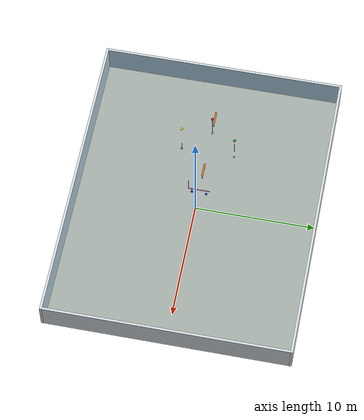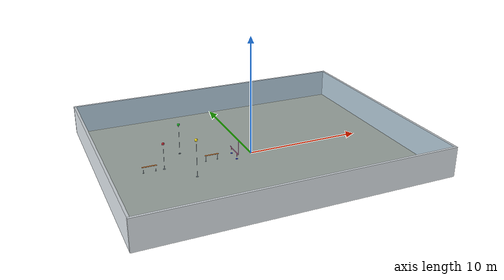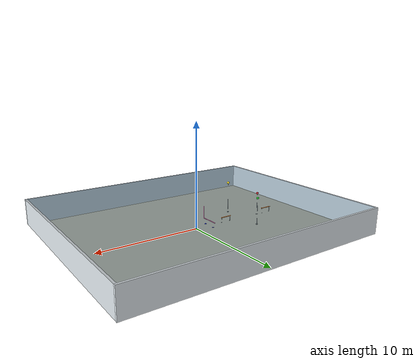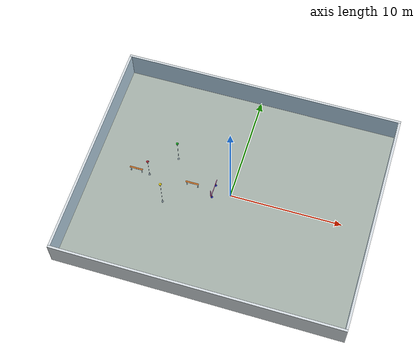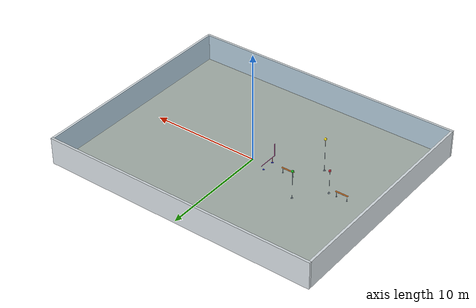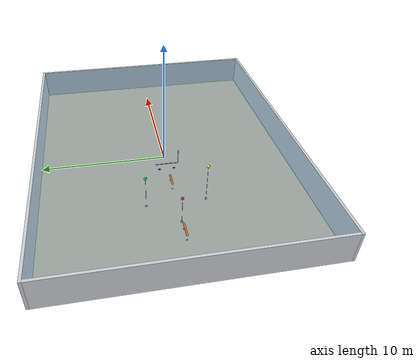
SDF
<sdf version="1.6">
 <world name="niot_mission">
  <include><uri>model://sun</uri></include>
  <model name="niot_pool">
   <static>true</static>
   <link name="link">
    <visual name="floor_v">
     <pose>0 0 -0.05 0 0 0</pose>
     <transparency>0.0</transparency>
     <geometry><box><size>25.0 20.0 0.1</size></box></geometry>
     <material>
      <ambient>0.8 0.78 0.7 1.0</ambient>
      <diffuse>0.8 0.78 0.7 1.0</diffuse>
      <specular>0.1 0.1 0.1 1</specular>
      <emissive>0.096 0.0936 0.08399999999999999 1</emissive>
     </material>
    </visual>
    <collision name="floor_c">
     <pose>0 0 -0.05 0 0 0</pose>
     <geometry><box><size>25.0 20.0 0.1</size></box></geometry>
    </collision>
    <visual name="wn_v">
     <pose>0 10.1 1.25 0 0 0</pose>
     <transparency>0.0</transparency>
     <geometry><box><size>25.4 0.2 2.5</size></box></geometry>
     <material>
      <ambient>0.85 0.88 0.9 1.0</ambient>
      <diffuse>0.85 0.88 0.9 1.0</diffuse>
      <specular>0.1 0.1 0.1 1</specular>
      <emissive>0.102 0.1056 0.108 1</emissive>
     </material>
    </visual>
    <collision name="wn_c">
     <pose>0 10.1 1.25 0 0 0</pose>
     <geometry><box><size>25.4 0.2 2.5</size></box></geometry>
    </collision>
    <visual name="ws_v">
     <pose>0 -10.1 1.25 0 0 0</pose>
     <transparency>0.0</transparency>
     <geometry><box><size>25.4 0.2 2.5</size></box></geometry>
     <material>
      <ambient>0.85 0.88 0.9 1.0</ambient>
      <diffuse>0.85 0.88 0.9 1.0</diffuse>
      <specular>0.1 0.1 0.1 1</specular>
      <emissive>0.102 0.1056 0.108 1</emissive>
     </material>
    </visual>
    <collision name="ws_c">
     <pose>0 -10.1 1.25 0 0 0</pose>
     <geometry><box><size>25.4 0.2 2.5</size></box></geometry>
    </collision>
    <visual name="we_v">
     <pose>12.6 0 1.25 0 0 0</pose>
     <transparency>0.0</transparency>
     <geometry><box><size>0.2 20.0 2.5</size></box></geometry>
     <material>
      <ambient>0.85 0.88 0.9 1.0</ambient>
      <diffuse>0.85 0.88 0.9 1.0</diffuse>
      <specular>0.1 0.1 0.1 1</specular>
      <emissive>0.102 0.1056 0.108 1</emissive>
     </material>
    </visual>
    <collision name="we_c">
     <pose>12.6 0 1.25 0 0 0</pose>
     <geometry><box><size>0.2 20.0 2.5</size></box></geometry>
    </collision>
    <visual name="ww_v">
     <pose>-12.6 0 1.25 0 0 0</pose>
     <transparency>0.0</transparency>
     <geometry><box><size>0.2 20.0 2.5</size></box></geometry>
     <material>
      <ambient>0.85 0.88 0.9 1.0</ambient>
      <diffuse>0.85 0.88 0.9 1.0</diffuse>
      <specular>0.1 0.1 0.1 1</specular>
      <emissive>0.102 0.1056 0.108 1</emissive>
     </material>
    </visual>
    <collision name="ww_c">
     <pose>-12.6 0 1.25 0 0 0</pose>
     <geometry><box><size>0.2 20.0 2.5</size></box></geometry>
    </collision>
   </link>
  </model>
  <model name="water">
   <static>true</static>
   <link name="link">
    <visual name="water">
     <pose>0 0 1.25 0 0 0</pose>
     <transparency>0.8</transparency>
     <geometry><box><size>25.0 20.0 2.5</size></box></geometry>
     <material>
      <ambient>0.1 0.4 0.6 1.0</ambient>
      <diffuse>0.1 0.4 0.6 1.0</diffuse>
      <specular>0.1 0.1 0.1 1</specular>
      <emissive>0.012 0.048 0.072 1</emissive>
     </material>
    </visual>
   </link>
  </model>
  <model name="flower_red">
   <static>true</static>
   <pose>-7.5 0.0 0 0 0 0.0</pose>
   <link name="link">
    <visual name="base_v">
     <pose>0 0 0.005 0 0 0</pose>
     <transparency>0.0</transparency>
     <geometry><cylinder><radius>0.1</radius><length>0.01</length></cylinder></geometry>
     <material>
      <ambient>0.55 0.55 0.55 1.0</ambient>
      <diffuse>0.55 0.55 0.55 1.0</diffuse>
      <specular>0.1 0.1 0.1 1</specular>
      <emissive>0.066 0.066 0.066 1</emissive>
     </material>
    </visual>
    <collision name="base_c">
     <pose>0 0 0.005 0 0 0</pose>
     <geometry><cylinder><radius>0.1</radius><length>0.01</length></cylinder></geometry>
    </collision>
    <visual name="post_v">
     <pose>0 0 1.05 0 0 0</pose>
     <transparency>0.0</transparency>
     <geometry><cylinder><radius>0.0105</radius><length>2.1</length></cylinder></geometry>
     <material>
      <ambient>0.55 0.55 0.55 1.0</ambient>
      <diffuse>0.55 0.55 0.55 1.0</diffuse>
      <specular>0.1 0.1 0.1 1</specular>
      <emissive>0.066 0.066 0.066 1</emissive>
     </material>
    </visual>
    <collision name="post_c">
     <pose>0 0 1.05 0 0 0</pose>
     <geometry><cylinder><radius>0.0105</radius><length>2.1</length></cylinder></geometry>
    </collision>
    <visual name="ball_v">
     <pose>0 0 2.2143 0 0 0</pose>
     <transparency>0.0</transparency>
     <geometry><sphere><radius>0.1143</radius></sphere></geometry>
     <material>
      <ambient>0.85 0.1 0.1 1.0</ambient>
      <diffuse>0.85 0.1 0.1 1.0</diffuse>
      <specular>0.1 0.1 0.1 1</specular>
      <emissive>0.102 0.012 0.012 1</emissive>
     </material>
    </visual>
    <collision name="ball_c">
     <pose>0 0 2.2143 0 0 0</pose>
     <geometry><sphere><radius>0.1143</radius></sphere></geometry>
    </collision>
   </link>
  </model>
  <model name="flower_green">
   <static>true</static>
   <pose>-5.515686516701557 2.25 0 0 0 0.0</pose>
   <link name="link">
    <visual name="base_v">
     <pose>0 0 0.005 0 0 0</pose>
     <transparency>0.0</transparency>
     <geometry><cylinder><radius>0.1</radius><length>0.01</length></cylinder></geometry>
     <material>
      <ambient>0.55 0.55 0.55 1.0</ambient>
      <diffuse>0.55 0.55 0.55 1.0</diffuse>
      <specular>0.1 0.1 0.1 1</specular>
      <emissive>0.066 0.066 0.066 1</emissive>
     </material>
    </visual>
    <collision name="base_c">
     <pose>0 0 0.005 0 0 0</pose>
     <geometry><cylinder><radius>0.1</radius><length>0.01</length></cylinder></geometry>
    </collision>
    <visual name="post_v">
     <pose>0 0 1.25 0 0 0</pose>
     <transparency>0.0</transparency>
     <geometry><cylinder><radius>0.0105</radius><length>2.5</length></cylinder></geometry>
     <material>
      <ambient>0.55 0.55 0.55 1.0</ambient>
      <diffuse>0.55 0.55 0.55 1.0</diffuse>
      <specular>0.1 0.1 0.1 1</specular>
      <emissive>0.066 0.066 0.066 1</emissive>
     </material>
    </visual>
    <collision name="post_c">
     <pose>0 0 1.25 0 0 0</pose>
     <geometry><cylinder><radius>0.0105</radius><length>2.5</length></cylinder></geometry>
    </collision>
    <visual name="ball_v">
     <pose>0 0 2.6143 0 0 0</pose>
     <transparency>0.0</transparency>
     <geometry><sphere><radius>0.1143</radius></sphere></geometry>
     <material>
      <ambient>0.1 0.7 0.15 1.0</ambient>
      <diffuse>0.1 0.7 0.15 1.0</diffuse>
      <specular>0.1 0.1 0.1 1</specular>
      <emissive>0.012 0.08399999999999999 0.018 1</emissive>
     </material>
    </visual>
    <collision name="ball_c">
     <pose>0 0 2.6143 0 0 0</pose>
     <geometry><sphere><radius>0.1143</radius></sphere></geometry>
    </collision>
   </link>
  </model>
  <model name="flower_yellow">
   <static>true</static>
   <pose>-5.515686516701557 -2.25 0 0 0 0.0</pose>
   <link name="link">
    <visual name="base_v">
     <pose>0 0 0.005 0 0 0</pose>
     <transparency>0.0</transparency>
     <geometry><cylinder><radius>0.1</radius><length>0.01</length></cylinder></geometry>
     <material>
      <ambient>0.55 0.55 0.55 1.0</ambient>
      <diffuse>0.55 0.55 0.55 1.0</diffuse>
      <specular>0.1 0.1 0.1 1</specular>
      <emissive>0.066 0.066 0.066 1</emissive>
     </material>
    </visual>
    <collision name="base_c">
     <pose>0 0 0.005 0 0 0</pose>
     <geometry><cylinder><radius>0.1</radius><length>0.01</length></cylinder></geometry>
    </collision>
    <visual name="post_v">
     <pose>0 0 1.5 0 0 0</pose>
     <transparency>0.0</transparency>
     <geometry><cylinder><radius>0.0105</radius><length>3.0</length></cylinder></geometry>
     <material>
      <ambient>0.55 0.55 0.55 1.0</ambient>
      <diffuse>0.55 0.55 0.55 1.0</diffuse>
      <specular>0.1 0.1 0.1 1</specular>
      <emissive>0.066 0.066 0.066 1</emissive>
     </material>
    </visual>
    <collision name="post_c">
     <pose>0 0 1.5 0 0 0</pose>
     <geometry><cylinder><radius>0.0105</radius><length>3.0</length></cylinder></geometry>
    </collision>
    <visual name="ball_v">
     <pose>0 0 3.1143 0 0 0</pose>
     <transparency>0.0</transparency>
     <geometry><sphere><radius>0.1143</radius></sphere></geometry>
     <material>
      <ambient>0.95 0.85 0.1 1.0</ambient>
      <diffuse>0.95 0.85 0.1 1.0</diffuse>
      <specular>0.1 0.1 0.1 1</specular>
      <emissive>0.11399999999999999 0.102 0.012 1</emissive>
     </material>
    </visual>
    <collision name="ball_c">
     <pose>0 0 3.1143 0 0 0</pose>
     <geometry><sphere><radius>0.1143</radius></sphere></geometry>
    </collision>
   </link>
  </model>
  <model name="path_0">
   <static>true</static>
   <pose>-8.7 0.0 0 0 0 0.0</pose>
   <link name="link">
    <visual name="plate_v">
     <pose>0 0 0.5 0 0 0</pose>
     <transparency>0.0</transparency>
     <geometry><box><size>1.2 0.15 0.01</size></box></geometry>
     <material>
      <ambient>0.95 0.45 0.05 1.0</ambient>
      <diffuse>0.95 0.45 0.05 1.0</diffuse>
      <specular>0.1 0.1 0.1 1</specular>
      <emissive>0.11399999999999999 0.054 0.006 1</emissive>
     </material>
    </visual>
    <collision name="plate_c">
     <pose>0 0 0.5 0 0 0</pose>
     <geometry><box><size>1.2 0.15 0.01</size></box></geometry>
    </collision>
    <visual name="post-0.5_v">
     <pose>-0.5 0 0.25 0 0 0</pose>
     <transparency>0.0</transparency>
     <geometry><cylinder><radius>0.0105</radius><length>0.5</length></cylinder></geometry>
     <material>
      <ambient>0.55 0.55 0.55 1.0</ambient>
      <diffuse>0.55 0.55 0.55 1.0</diffuse>
      <specular>0.1 0.1 0.1 1</specular>
      <emissive>0.066 0.066 0.066 1</emissive>
     </material>
    </visual>
    <visual name="base-0.5_v">
     <pose>-0.5 0 0.005 0 0 0</pose>
     <transparency>0.0</transparency>
     <geometry><cylinder><radius>0.06</radius><length>0.01</length></cylinder></geometry>
     <material>
      <ambient>0.55 0.55 0.55 1.0</ambient>
      <diffuse>0.55 0.55 0.55 1.0</diffuse>
      <specular>0.1 0.1 0.1 1</specular>
      <emissive>0.066 0.066 0.066 1</emissive>
     </material>
    </visual>
    <visual name="post0.5_v">
     <pose>0.5 0 0.25 0 0 0</pose>
     <transparency>0.0</transparency>
     <geometry><cylinder><radius>0.0105</radius><length>0.5</length></cylinder></geometry>
     <material>
      <ambient>0.55 0.55 0.55 1.0</ambient>
      <diffuse>0.55 0.55 0.55 1.0</diffuse>
      <specular>0.1 0.1 0.1 1</specular>
      <emissive>0.066 0.066 0.066 1</emissive>
     </material>
    </visual>
    <visual name="base0.5_v">
     <pose>0.5 0 0.005 0 0 0</pose>
     <transparency>0.0</transparency>
     <geometry><cylinder><radius>0.06</radius><length>0.01</length></cylinder></geometry>
     <material>
      <ambient>0.55 0.55 0.55 1.0</ambient>
      <diffuse>0.55 0.55 0.55 1.0</diffuse>
      <specular>0.1 0.1 0.1 1</specular>
      <emissive>0.066 0.066 0.066 1</emissive>
     </material>
    </visual>
   </link>
  </model>
  <model name="path_2">
   <static>true</static>
   <pose>-3.5 0.0 0 0 0 0.0</pose>
   <link name="link">
    <visual name="plate_v">
     <pose>0 0 0.5 0 0 0</pose>
     <transparency>0.0</transparency>
     <geometry><box><size>1.2 0.15 0.01</size></box></geometry>
     <material>
      <ambient>0.95 0.45 0.05 1.0</ambient>
      <diffuse>0.95 0.45 0.05 1.0</diffuse>
      <specular>0.1 0.1 0.1 1</specular>
      <emissive>0.11399999999999999 0.054 0.006 1</emissive>
     </material>
    </visual>
    <collision name="plate_c">
     <pose>0 0 0.5 0 0 0</pose>
     <geometry><box><size>1.2 0.15 0.01</size></box></geometry>
    </collision>
    <visual name="post-0.5_v">
     <pose>-0.5 0 0.25 0 0 0</pose>
     <transparency>0.0</transparency>
     <geometry><cylinder><radius>0.0105</radius><length>0.5</length></cylinder></geometry>
     <material>
      <ambient>0.55 0.55 0.55 1.0</ambient>
      <diffuse>0.55 0.55 0.55 1.0</diffuse>
      <specular>0.1 0.1 0.1 1</specular>
      <emissive>0.066 0.066 0.066 1</emissive>
     </material>
    </visual>
    <visual name="base-0.5_v">
     <pose>-0.5 0 0.005 0 0 0</pose>
     <transparency>0.0</transparency>
     <geometry><cylinder><radius>0.06</radius><length>0.01</length></cylinder></geometry>
     <material>
      <ambient>0.55 0.55 0.55 1.0</ambient>
      <diffuse>0.55 0.55 0.55 1.0</diffuse>
      <specular>0.1 0.1 0.1 1</specular>
      <emissive>0.066 0.066 0.066 1</emissive>
     </material>
    </visual>
    <visual name="post0.5_v">
     <pose>0.5 0 0.25 0 0 0</pose>
     <transparency>0.0</transparency>
     <geometry><cylinder><radius>0.0105</radius><length>0.5</length></cylinder></geometry>
     <material>
      <ambient>0.55 0.55 0.55 1.0</ambient>
      <diffuse>0.55 0.55 0.55 1.0</diffuse>
      <specular>0.1 0.1 0.1 1</specular>
      <emissive>0.066 0.066 0.066 1</emissive>
     </material>
    </visual>
    <visual name="base0.5_v">
     <pose>0.5 0 0.005 0 0 0</pose>
     <transparency>0.0</transparency>
     <geometry><cylinder><radius>0.06</radius><length>0.01</length></cylinder></geometry>
     <material>
      <ambient>0.55 0.55 0.55 1.0</ambient>
      <diffuse>0.55 0.55 0.55 1.0</diffuse>
      <specular>0.1 0.1 0.1 1</specular>
      <emissive>0.066 0.066 0.066 1</emissive>
     </material>
    </visual>
   </link>
  </model>
  <model name="love_lane">
   <static>true</static>
   <pose>-1.515 0.0 0 0 0 3.14159</pose>
   <link name="link">
    <visual name="base1_v">
     <pose>0 -0.6 0.0025 0 0 0</pose>
     <geometry><cylinder><radius>0.1</radius><length>0.005</length></cylinder></geometry>
     <material><ambient>0.1 0.1 0.8 1.0</ambient><diffuse>0.1 0.1 0.8 1.0</diffuse></material>
    </visual>
    <collision name="base1_c">
     <pose>0 -0.6 0.0025 0 0 0</pose>
     <geometry><cylinder><radius>0.1</radius><length>0.005</length></cylinder></geometry>
    </collision>
    <visual name="post1_v">
     <pose>0 -0.6 0.25 0 0 0</pose>
     <geometry><cylinder><radius>0.0105</radius><length>0.5</length></cylinder></geometry>
     <material><ambient>0.8 0.1 0.1 1.0</ambient><diffuse>0.8 0.1 0.1 1.0</diffuse></material>
    </visual>
    <collision name="post1_c">
     <pose>0 -0.6 0.25 0 0 0</pose>
     <geometry><cylinder><radius>0.0105</radius><length>0.5</length></cylinder></geometry>
    </collision>
    <visual name="base2_v">
     <pose>0 0.6 0.0025 0 0 0</pose>
     <geometry><cylinder><radius>0.1</radius><length>0.005</length></cylinder></geometry>
     <material><ambient>0.1 0.1 0.8 1.0</ambient><diffuse>0.1 0.1 0.8 1.0</diffuse></material>
    </visual>
    <collision name="base2_c">
     <pose>0 0.6 0.0025 0 0 0</pose>
     <geometry><cylinder><radius>0.1</radius><length>0.005</length></cylinder></geometry>
    </collision>
    <visual name="post2_v">
     <pose>0 0.6 0.25 0 0 0</pose>
     <geometry><cylinder><radius>0.0105</radius><length>0.5</length></cylinder></geometry>
     <material><ambient>0.8 0.1 0.1 1.0</ambient><diffuse>0.8 0.1 0.1 1.0</diffuse></material>
    </visual>
    <collision name="post2_c">
     <pose>0 0.6 0.25 0 0 0</pose>
     <geometry><cylinder><radius>0.0105</radius><length>0.5</length></cylinder></geometry>
    </collision>
    <visual name="main_pipe_v">
     <pose>0 0 0.515 1.5708 0 0</pose>
     <geometry><cylinder><radius>0.03</radius><length>1.8</length></cylinder></geometry>
     <material><ambient>1.0 0.4 0.7 1.0</ambient><diffuse>1.0 0.4 0.7 1.0</diffuse></material>
    </visual>
    <collision name="main_pipe_c">
     <pose>0 0 0.515 1.5708 0 0</pose>
     <geometry><cylinder><radius>0.03</radius><length>1.8</length></cylinder></geometry>
    </collision>
    <visual name="l_pipe_v">
     <pose>0 0.9 1.115 0 0 0</pose>
     <geometry><cylinder><radius>0.03</radius><length>1.2</length></cylinder></geometry>
     <material><ambient>1.0 0.4 0.7 1.0</ambient><diffuse>1.0 0.4 0.7 1.0</diffuse></material>
    </visual>
    <collision name="l_pipe_c">
     <pose>0 0.9 1.115 0 0 0</pose>
     <geometry><cylinder><radius>0.03</radius><length>1.2</length></cylinder></geometry>
    </collision>
   </link>
  </model>
 </world>
</sdf>
